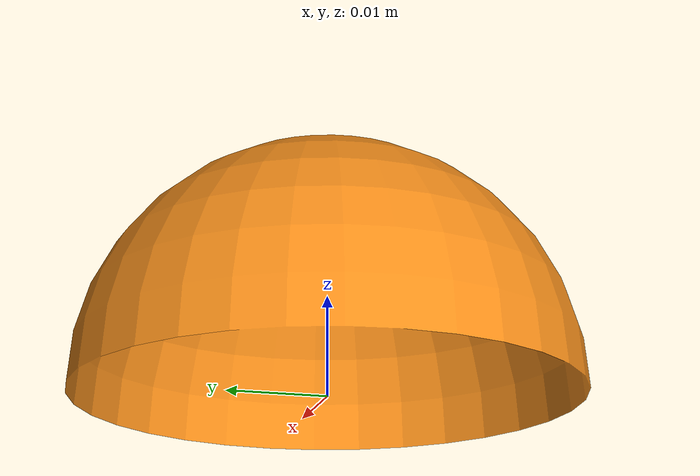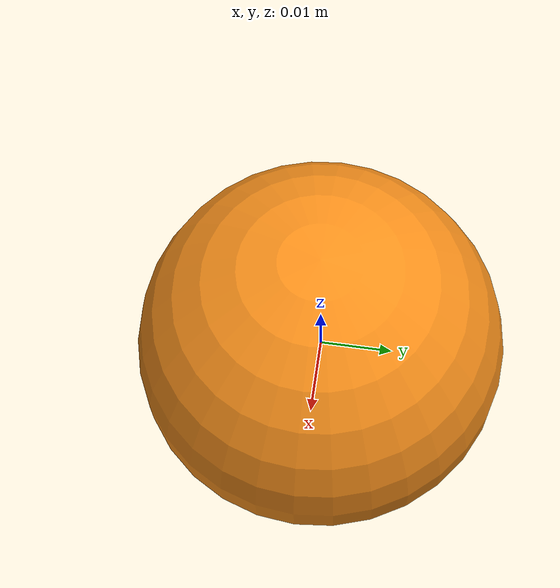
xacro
<?xml version="1.0"?>
<!-- Revolute-Revolute Manipulator -->
<robot name="half_ball" xmlns:xacro="http://www.ros.org/wiki/xacro">

  <!-- Constants for robot dimensions -->
  <xacro:property name="PI" value="3.1415926535897931"/>
  <xacro:property name="mass" value="0.01" /> <!-- arbitrary value for mass -->

  <xacro:include filename="$(find object_description)/urdf/materials.xacro" />

  <link name="world"/>

  <joint name="world_half_ball" type="floating">
    <parent link="world"/>
    <child link="half_ball"/>
    <origin xyz="0 0 0" rpy="0 0 0"/>
  </joint>

  <!-- table -->
  <link name="half_ball">

    <visual>
      <origin xyz="0 0 0" rpy="0 0 0"/>
      <geometry>
	<mesh filename="package://object_description/meshes/half_ball.stl" scale="1 1 1" />
      </geometry>
      <material name="orange"/>
    </visual>

    <collision>
      <origin xyz="0 0 0" rpy="0 0 0"/>
      <geometry>
	<mesh filename="package://object_description/meshes/half_ball.stl" scale="1 1 1" />
      </geometry>
    </collision>

    <inertial>
      <origin xyz="0 0 0" rpy="0 0 0"/>
      <mass value="${mass}"/>
      <inertia
	  ixx="0.01" ixy="0.0" ixz="0.0"
	  iyy="0.01" iyz="0.0"
	  izz="0.01" />
    </inertial>
  </link>

  <gazebo reference="half_ball">
    <material>Gazebo/Wood</material>
	<mu1>5000</mu1>
    <mu2>5000</mu2>
    <kp>10000.0</kp>
    <kd>1.0</kd>
  </gazebo>

</robot>
